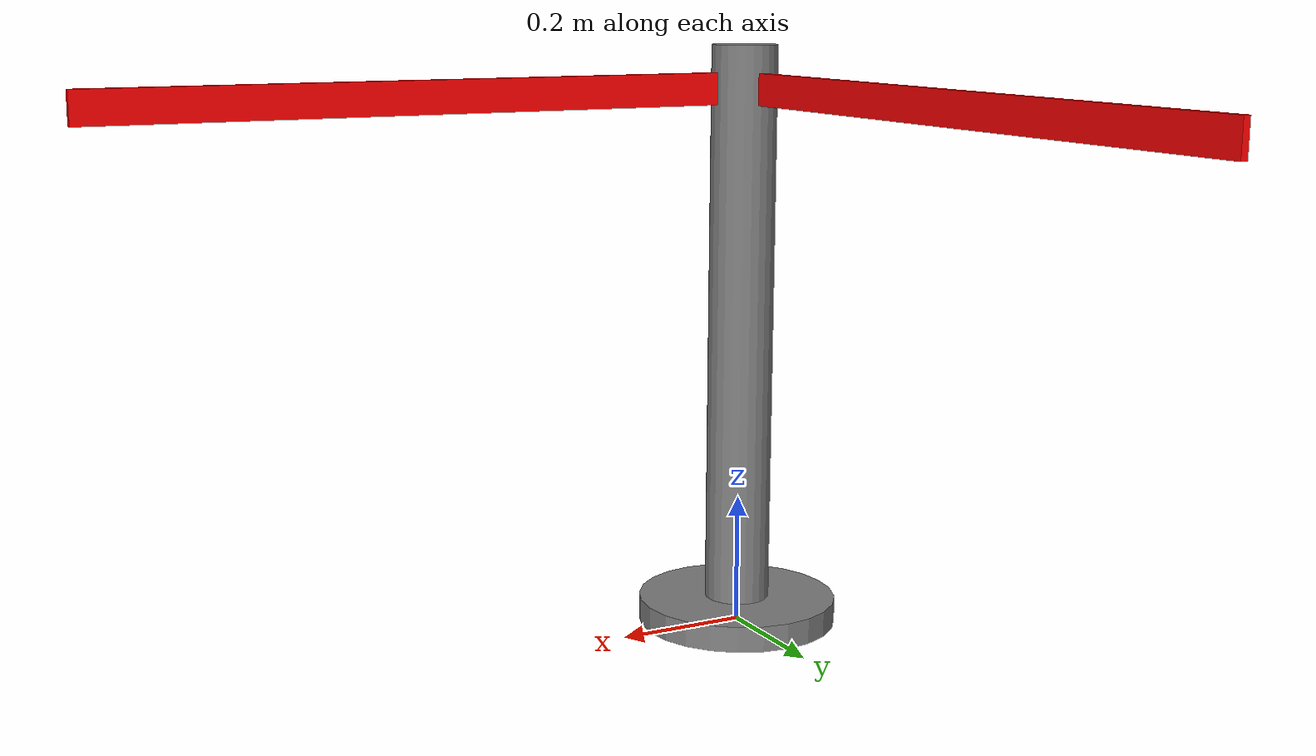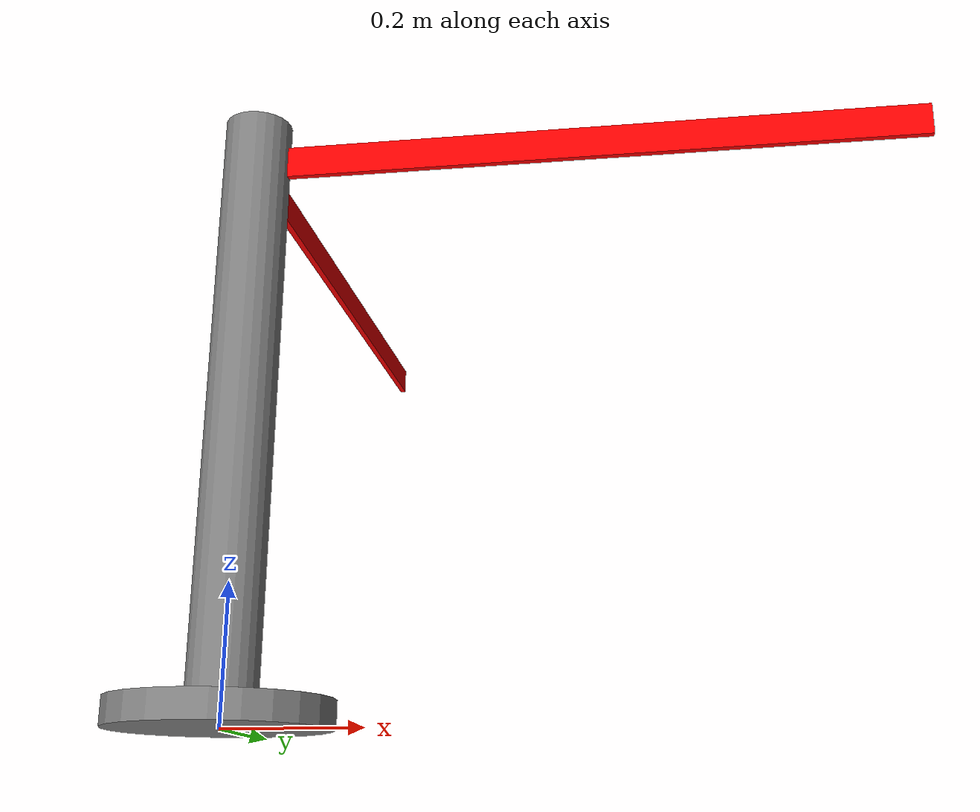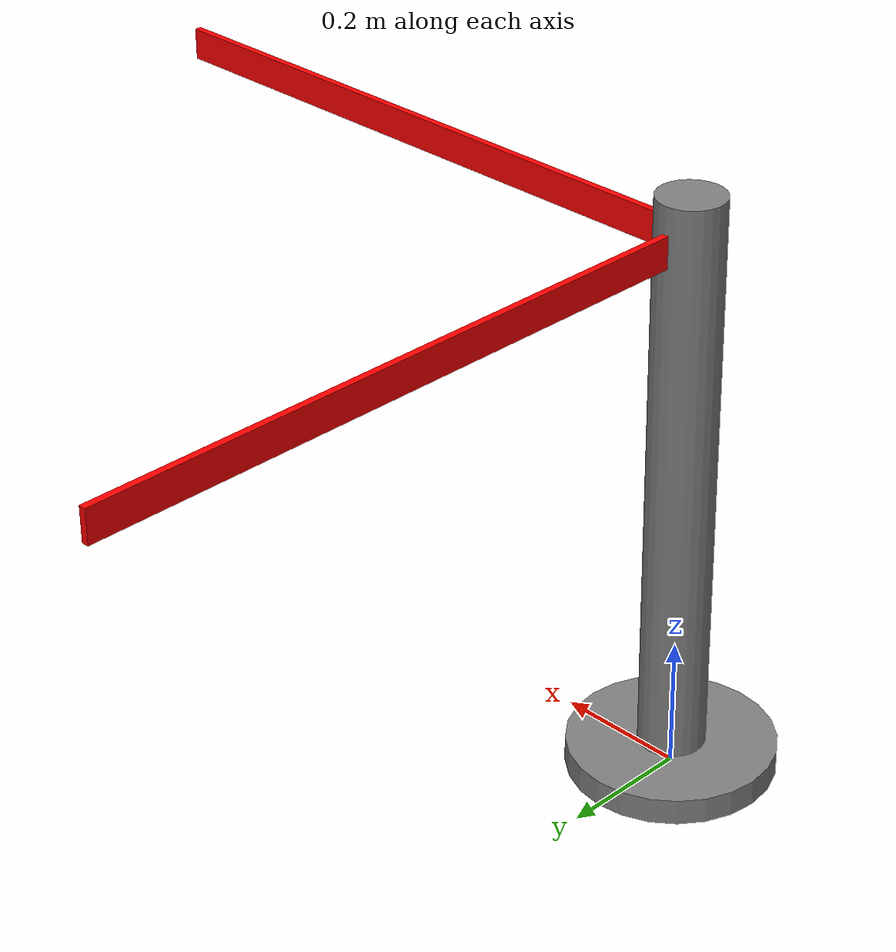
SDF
<?xml version="1.0" ?>
<sdf version='1.6'>
  <model name="barrier_with_belt_1_dual">
    <static>true</static> <!-- Static model -->

    <!-- Base Plate -->
    <link name="base1">
      <visual name="base1_visual">
        <geometry>
          <cylinder>
            <radius>0.155</radius> <!-- Diameter: 31 cm -->
            <length>0.04</length> <!-- Thickness: 4 cm -->
          </cylinder>
        </geometry>
        <material>
          <ambient>0.5 0.5 0.5 1</ambient> <!-- Grey color -->
        </material>
      </visual>
      <collision name="base1_collision">
        <geometry>
          <cylinder>
            <radius>0.155</radius>
            <length>0.04</length>
          </cylinder>
        </geometry>
      </collision>
      <pose>0 0 0.02 0 0 0</pose> <!-- Base at ground level -->
    </link>

    <!-- Pillar -->
    <link name="cylinder1">
      <visual name="cylinder1_visual">
        <geometry>
          <cylinder>
            <radius>0.05</radius> <!-- Radius: 5 cm -->
            <length>0.89</length> <!-- Height: 89 cm -->
          </cylinder>
        </geometry>
        <material>
          <ambient>0.5 0.5 0.5 1</ambient> <!-- Grey color -->
        </material>
      </visual>
      <collision name="cylinder1_collision">
        <geometry>
          <cylinder>
            <radius>0.05</radius>
            <length>0.89</length>
          </cylinder>
        </geometry>
      </collision>
      <pose>0 0 0.46 0 0 0</pose> <!-- Placed on top of the base -->
    </link>

    <!-- Belt_1 -->
    <link name="tape_1">
      <visual name="tape_visual_1">
        <geometry>
          <box>
            <size>1.0 0.048 0.01</size> <!-- Length, Width, Thickness -->
          </box>
        </geometry>
        <material>
          <ambient>1 0 0 1</ambient> <!-- Red color -->
        </material>
      </visual>
      <collision name="tape_collision">
        <geometry>
          <box>
            <size>1.0 0.048 0.01</size>
          </box>
        </geometry>
      </collision>
      <pose>0.50 0 0.84 1.571 0 0</pose> <!-- Aligned with the pillar -->
    </link>

    <!-- Belt_2 -->
    <link name="tape_2">
      <visual name="tape_visual_2">
        <geometry>
          <box>
            <size>1.0 0.048 0.01</size> <!-- Length, Width, Thickness -->
          </box>
        </geometry>
        <material>
          <ambient>1 0 0 1</ambient> <!-- Red color -->
        </material>
      </visual>
      <collision name="tape_collision">
        <geometry>
          <box>
            <size>1.0 0.048 0.01</size>
          </box>
        </geometry>
      </collision>
      <pose>0 0.5 0.84 1.571 0 1.571</pose> <!-- Aligned with the pillar -->
    </link>

    <!-- Fixed Joints -->
    <joint name="cylinder1_to_base" type="fixed">
      <parent>base1</parent>
      <child>cylinder1</child>
    </joint>
    <joint name="cylinder1_to_tape_1" type="fixed">
      <parent>cylinder1</parent>
      <child>tape_1</child>
    </joint>
    <joint name="cylinder1_to_tape_2" type="fixed">
      <parent>cylinder1</parent>
      <child>tape_2</child>
    </joint>

  </model>
</sdf>
